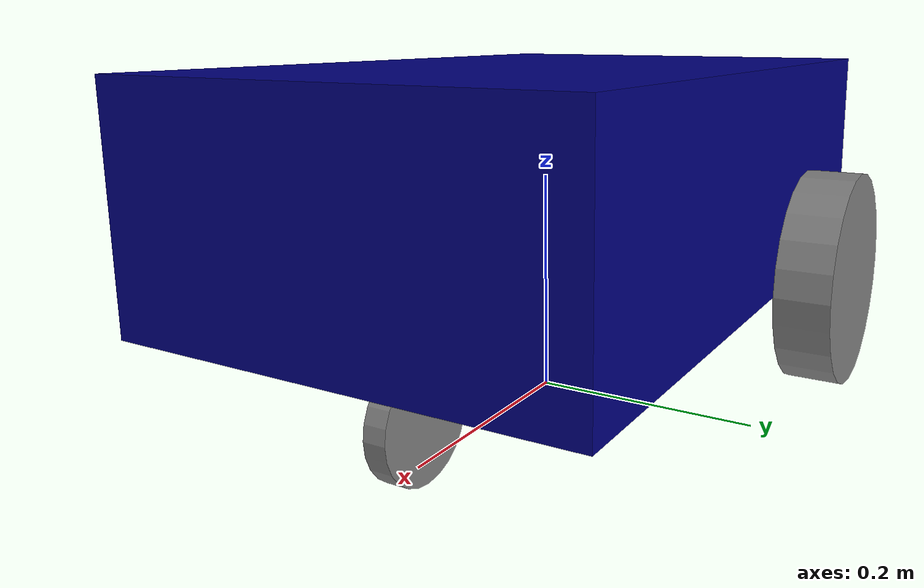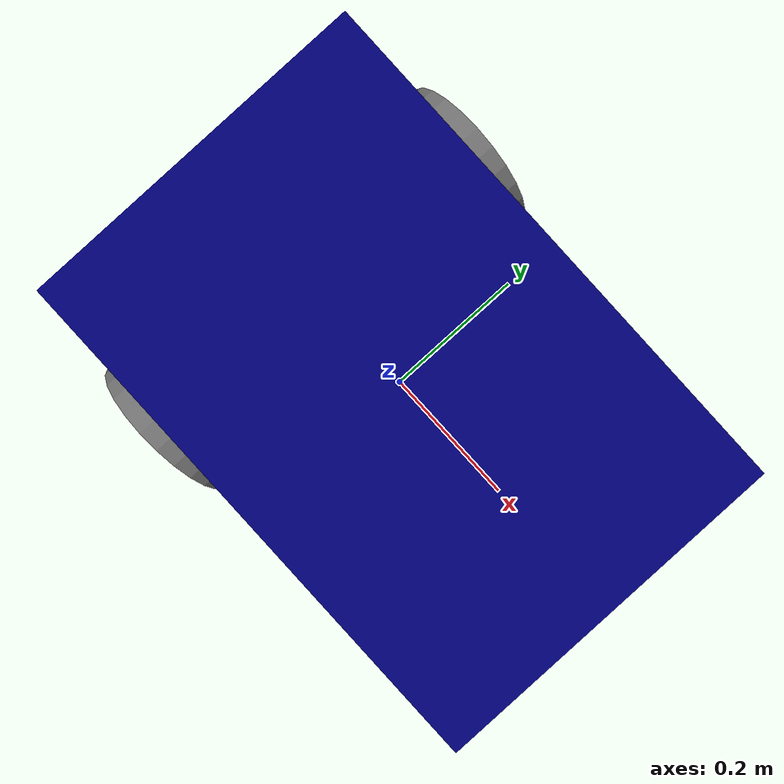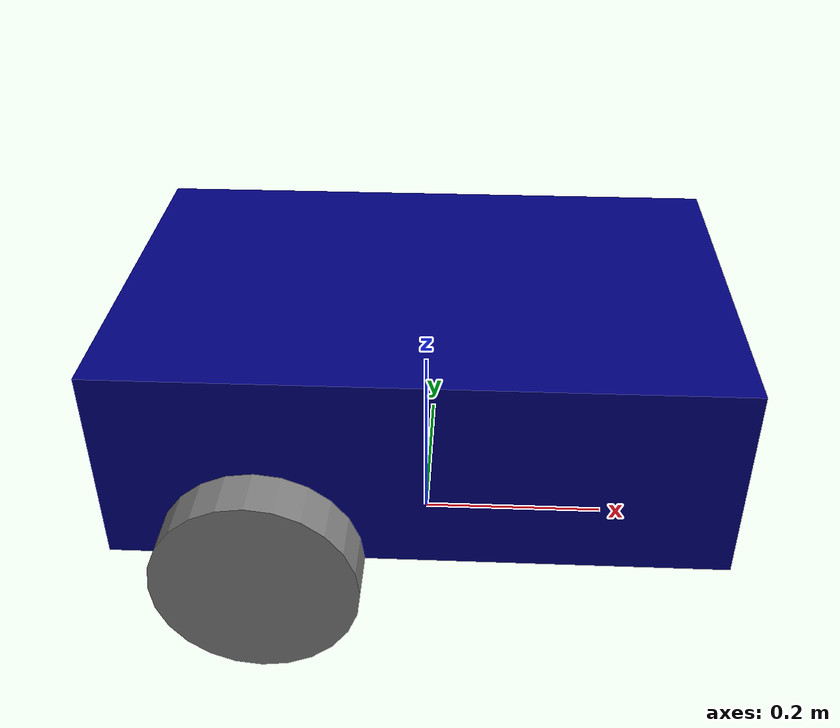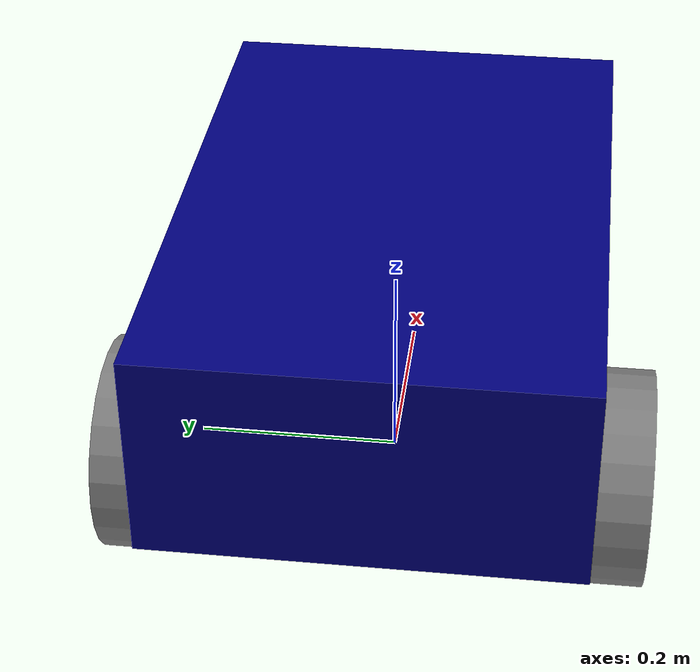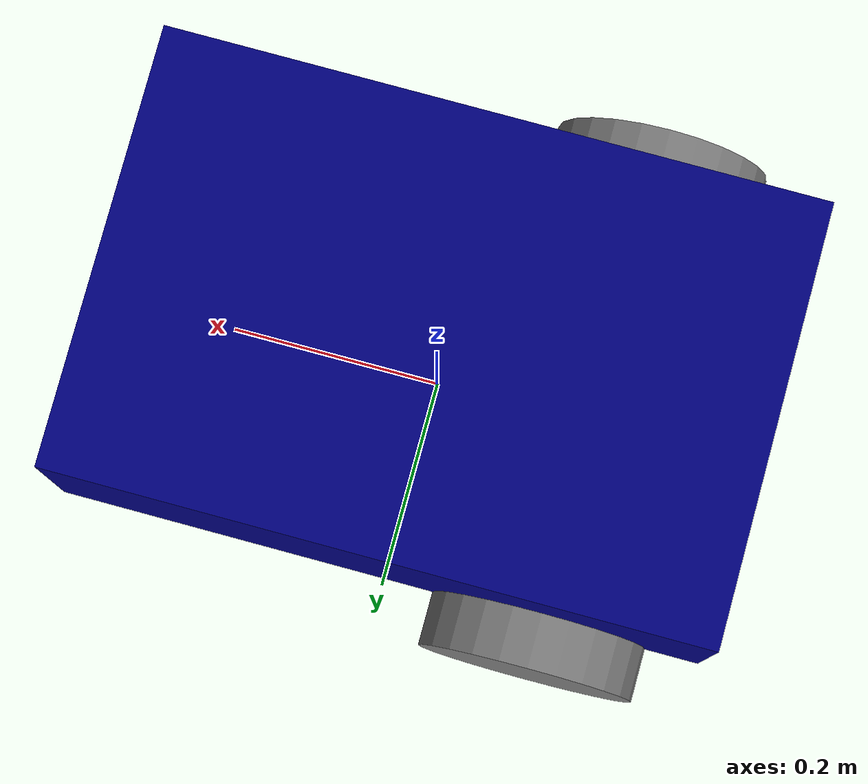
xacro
<?xml version="1.0"?>
<robot xmlns:xacro="http://www.ros.org/wiki/xacro">

    <xacro:property name="wheel_radius" value="0.1"/>
    <xacro:property name="wheel_length" value="0.05"/>

    <xacro:macro name="wheel_link" params="prefix">
        <link name="${prefix}_wheel_link">
            <visual>
                <geometry>
                    <cylinder radius="${wheel_radius}" length="${wheel_length}" />
                </geometry>
                <origin xyz="0 0 0" rpy="${pi / 2} 0 0" />
                <material name="grey" />
            </visual>
            <collision>
                <geometry>
                    <cylinder radius="${wheel_radius}" length="${wheel_length}" />
                </geometry>
                <origin xyz="0 0 0" rpy="${pi / 2} 0 0" />
            </collision>
            <xacro:cylinder_inertia m="1.0" r="${wheel_radius}" h="${wheel_length}"
                                    xyz="0 0 0" rpy="${pi / 2} 0 0"/>
        </link>
    </xacro:macro>

    <xacro:property name="base_length" value="0.6"/>
    <xacro:property name="base_width" value="0.4"/>
    <xacro:property name="base_height" value="0.2"/>
    <xacro:property name="steering_length" value="0.1"/>
    <xacro:property name="steering_width" value="0.1"/>
    <xacro:property name="steering_height" value="0.02"/>
    <xacro:property name="small_wheel_radius" value="0.05"/>
    <xacro:property name="small_wheel_length" value="0.02"/>

    <material name="blue">
        <color rgba="0 0 0.5 1" />
    </material>

    <material name="grey">
        <color rgba="0.5 0.5 0.5 1" />
    </material>

    <link name="base_footprint" />

    <link name="base_link">
        <visual>
            <geometry>
                <box size="${base_length} ${base_width} ${base_height}" />
            </geometry>
            <origin xyz="0 0 ${base_height / 2.0}" rpy="0 0 0" />
            <material name="blue" />
        </visual>
        <collision>
            <geometry>
                <box size="${base_length} ${base_width} ${base_height}" />
            </geometry>
            <origin xyz="0 0 ${base_height / 2.0}" rpy="0 0 0" />
        </collision>
        <xacro:box_inertia m="5.0" l="${base_length}" w="${base_width}" h="${base_height}"
                           xyz="0 0 ${base_height / 2.0}" rpy="0 0 0" />
    </link>

    <xacro:wheel_link prefix="right"/>
    <xacro:wheel_link prefix="left"/>

    <link name="caster_wheel_link">
        <visual>
            <geometry>
                <cylinder radius="${small_wheel_radius}" length="${small_wheel_length}"/>
            </geometry>
            <origin xyz="0 0 0" rpy="${pi / 2} 0 0" />
            <material name="grey" />
        </visual>
        <collision>
            <geometry>
                <cylinder radius="${small_wheel_radius}" length="${small_wheel_length}"/>
            </geometry>
            <origin xyz="0 0 0" rpy="${pi / 2} 0 0" />
        </collision>
        <xacro:cylinder_inertia m="1.0" r="${small_wheel_radius}" h="${small_wheel_length}"
                                    xyz="0 0 0" rpy="${pi / 2} 0 0"/>
    </link>

    <link name="base_steering_link">
        <visual>
            <geometry>
                <box size="${steering_length} ${steering_width} ${steering_height}" />
            </geometry>
            <origin xyz="0 0 0" rpy="0 0 0" />
            <material name="blue" />
        </visual>
        <collision>
            <geometry>
                <box size="${steering_length} ${steering_width} ${steering_height}" />
            </geometry>
            <origin xyz="0 0 0" rpy="0 0 0" />
            <material name="blue" />
        </collision>
        <xacro:box_inertia m="0.5" l="${steering_length}" w="${steering_width}" h="${steering_height}"
                           xyz="0 0 0" rpy="0 0 0" />
    </link>

    <joint name="base_joint" type="fixed">
        <parent link="base_footprint" />
        <child link="base_link" />
        <origin xyz="0 0 0.1" rpy="0 0 0"/>
    </joint>

    <joint name="base_right_wheel_joint" type="continuous">
        <parent link="base_link" />
        <child link="right_wheel_link" />
        <origin xyz="-0.15 -0.225 0" rpy="0 0 0" />
        <axis xyz="0 1 0" />
    </joint>

    <joint name="base_left_wheel_joint" type="continuous">
        <parent link="base_link" />
        <child link="left_wheel_link" />
        <origin xyz="-0.15 0.225 0" rpy="0 0 0" />
        <axis xyz="0 1 0" />
    </joint>

    <joint name="base_steering_caster_wheel_joint" type="continuous">
        <parent link="base_steering_link" />
        <child link="caster_wheel_link" />
        <origin xyz="0 0 -0.05" rpy="0 0 0" />
        <axis xyz="0 1 0" />
    </joint>

    <joint name="base_steering_joint" type="revolute">
        <parent link="base_link" />
        <child link="base_steering_link" />
        <origin xyz="0.2 0 -0.01" rpy="0 0 0" />
        <axis xyz="0 0 1" />
        <limit lower="${pi/2}" upper="${-pi/2}" effort="1.0" velocity="1.0"/>
    </joint>

</robot>
